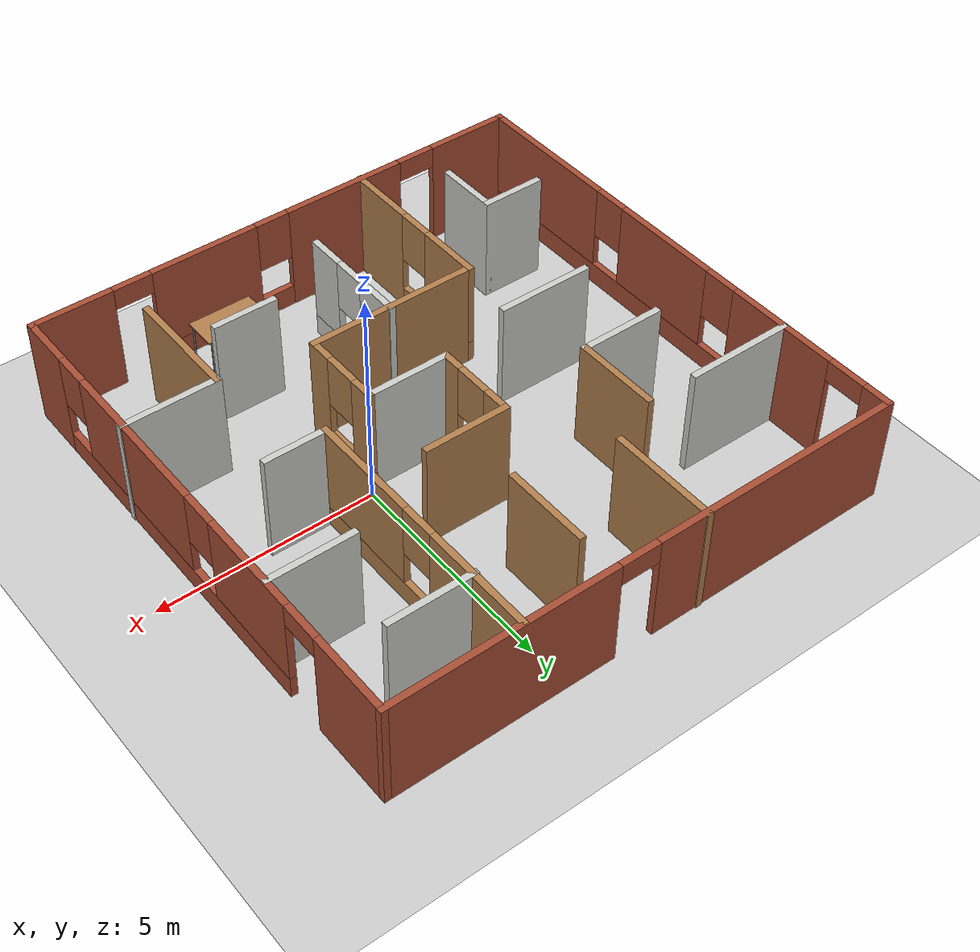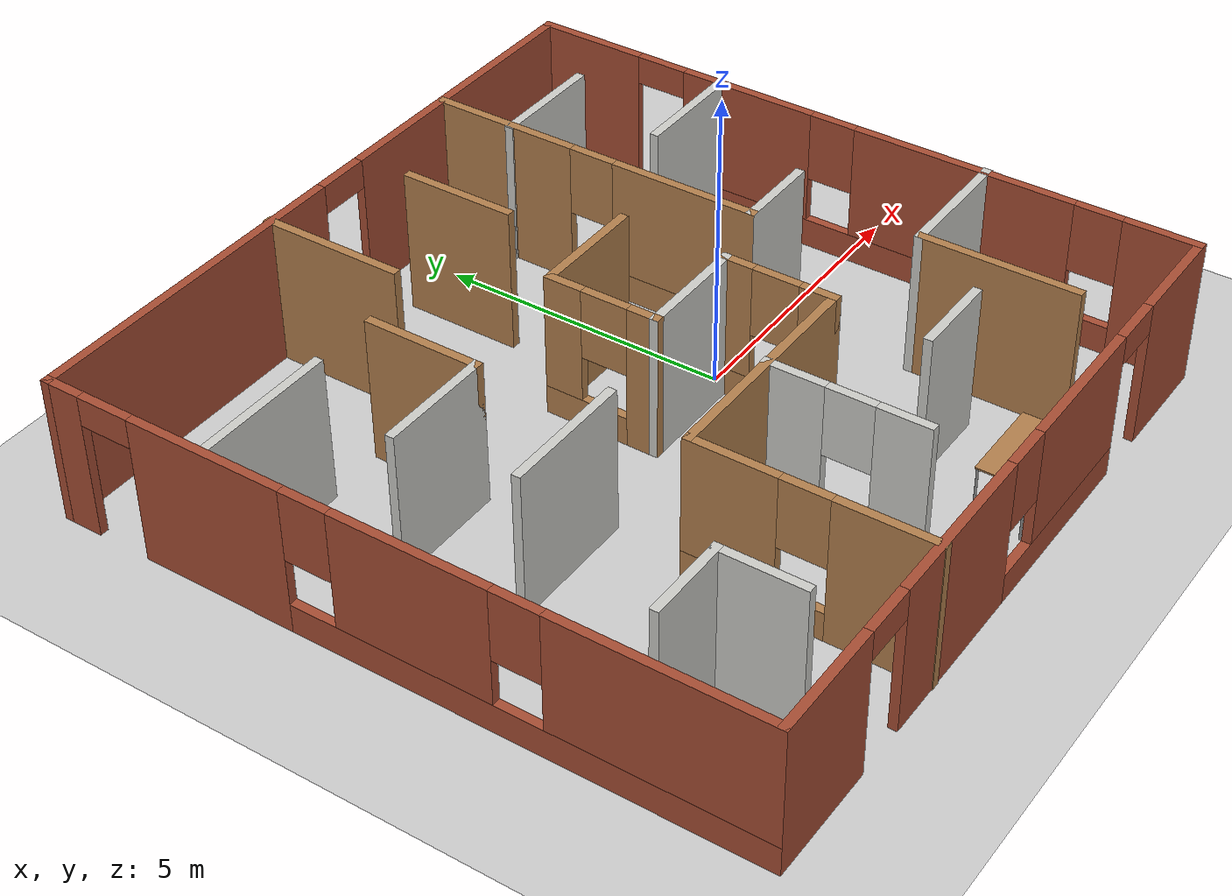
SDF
<sdf version="1.6">
 <world name="default">
  <light name="sun" type="directional">
   <pose>0 0 10 0 -0 0</pose>
   <diffuse>0.8 0.8 0.8 1</diffuse>
   <specular>0.2 0.2 0.2 1</specular>
   <attenuation>
    <range>1000</range>
    <constant>0.9</constant>
    <linear>0.01</linear>
    <quadratic>0.001</quadratic>
   </attenuation>
   <direction>-0.5 0.1 -0.9</direction>
  </light>
  <model name="ground_plane">
   <static>1</static>
   <link name="link">
    <collision name="collision">
     <geometry><plane><normal>0 0 1</normal><size>100 100</size></plane></geometry>
     <surface><friction><ode><mu>100</mu><mu2>50</mu2></ode></friction></surface>
    </collision>
    <visual name="visual">
     <cast_shadows>0</cast_shadows>
     <geometry><plane><normal>0 0 1</normal><size>100 100</size></plane></geometry>
     <material>
      <script><uri>file://media/materials/scripts/gazebo.material</uri><name>Gazebo/Grey</name></script>
     </material>
    </visual>
   </link>
  </model>
  <gravity>0 0 -9.8</gravity>
  <magnetic_field>6e-06 2.3e-05 -4.2e-05</magnetic_field>
  <atmosphere type="adiabatic"/>
  <physics name="default_physics" default="0" type="ode">
   <max_step_size>0.001</max_step_size>
   <real_time_factor>1</real_time_factor>
   <real_time_update_rate>1000</real_time_update_rate>
  </physics>
  <scene><ambient>0.4 0.4 0.4 1</ambient><background>0.7 0.7 0.7 1</background><shadows>1</shadows></scene>
  <spherical_coordinates>
   <surface_model>EARTH_WGS84</surface_model>
   <latitude_deg>0</latitude_deg>
   <longitude_deg>0</longitude_deg>
   <elevation>0</elevation>
   <heading_deg>0</heading_deg>
  </spherical_coordinates>
  <model name="big_building_gpokhark">
   <pose>-1.91617 0.021336 0 0 -0 0</pose>
   <link name="Wall_0">
    <pose>-0.011397 -5.93141 0 0 -0 0</pose>
    <visual name="Wall_0_Visual_0">
     <pose>-4.98708 0 1.25 0 -0 0</pose>
     <geometry><box><size>2.02584 0.15 2.5</size></box></geometry>
     <material>
      <script><uri>file://media/materials/scripts/gazebo.material</uri><name>Gazebo/Bricks</name></script>
      <ambient>1 1 1 1</ambient>
     </material>
     <meta><layer>0</layer></meta>
    </visual>
    <collision name="Wall_0_Collision_0">
     <geometry><box><size>2.02584 0.15 2.5</size></box></geometry>
     <pose>-4.98708 0 1.25 0 -0 0</pose>
    </collision>
    <visual name="Wall_0_Visual_1">
     <pose>-1.6087 0 1.25 0 -0 0</pose>
     <geometry><box><size>2.93091 0.15 2.5</size></box></geometry>
     <material>
      <script><uri>file://media/materials/scripts/gazebo.material</uri><name>Gazebo/Bricks</name></script>
      <ambient>1 1 1 1</ambient>
     </material>
     <meta><layer>0</layer></meta>
    </visual>
    <collision name="Wall_0_Collision_1">
     <geometry><box><size>2.93091 0.15 2.5</size></box></geometry>
     <pose>-1.6087 0 1.25 0 -0 0</pose>
    </collision>
    <visual name="Wall_0_Visual_2">
     <pose>5.05633 0 1.25 0 -0 0</pose>
     <geometry><box><size>1.88735 0.15 2.5</size></box></geometry>
     <material>
      <script><uri>file://media/materials/scripts/gazebo.material</uri><name>Gazebo/Bricks</name></script>
      <ambient>1 1 1 1</ambient>
     </material>
     <meta><layer>0</layer></meta>
    </visual>
    <collision name="Wall_0_Collision_2">
     <geometry><box><size>1.88735 0.15 2.5</size></box></geometry>
     <pose>5.05633 0 1.25 0 -0 0</pose>
    </collision>
    <visual name="Wall_0_Visual_3">
     <pose>1.5347 0 0.25 0 -0 0</pose>
     <geometry><box><size>3.3559 0.15 0.5</size></box></geometry>
     <material>
      <script><uri>file://media/materials/scripts/gazebo.material</uri><name>Gazebo/Bricks</name></script>
      <ambient>1 1 1 1</ambient>
     </material>
     <meta><layer>0</layer></meta>
    </visual>
    <collision name="Wall_0_Collision_3">
     <geometry><box><size>3.3559 0.15 0.5</size></box></geometry>
     <pose>1.5347 0 0.25 0 -0 0</pose>
    </collision>
    <visual name="Wall_0_Visual_4">
     <pose>1.9347 0 1.5 0 -0 0</pose>
     <geometry><box><size>2.5559 0.15 2</size></box></geometry>
     <material>
      <script><uri>file://media/materials/scripts/gazebo.material</uri><name>Gazebo/Bricks</name></script>
      <ambient>1 1 1 1</ambient>
     </material>
     <meta><layer>0</layer></meta>
    </visual>
    <collision name="Wall_0_Collision_4">
     <geometry><box><size>2.5559 0.15 2</size></box></geometry>
     <pose>1.9347 0 1.5 0 -0 0</pose>
    </collision>
    <visual name="Wall_0_Visual_5">
     <pose>0.256754 0 1.9 0 -0 0</pose>
     <geometry><box><size>0.8 0.15 1.2</size></box></geometry>
     <material>
      <script><uri>file://media/materials/scripts/gazebo.material</uri><name>Gazebo/Bricks</name></script>
      <ambient>1 1 1 1</ambient>
     </material>
     <meta><layer>0</layer></meta>
    </visual>
    <collision name="Wall_0_Collision_5">
     <geometry><box><size>0.8 0.15 1.2</size></box></geometry>
     <pose>0.256754 0 1.9 0 -0 0</pose>
    </collision>
    <visual name="Wall_0_Visual_6">
     <pose>-3.52415 0 2.25 0 -0 0</pose>
     <geometry><box><size>0.9 0.15 0.5</size></box></geometry>
     <material>
      <script><uri>file://media/materials/scripts/gazebo.material</uri><name>Gazebo/Bricks</name></script>
      <ambient>1 1 1 1</ambient>
     </material>
     <meta><layer>0</layer></meta>
    </visual>
    <collision name="Wall_0_Collision_6">
     <geometry><box><size>0.9 0.15 0.5</size></box></geometry>
     <pose>-3.52415 0 2.25 0 -0 0</pose>
    </collision>
    <visual name="Wall_0_Visual_7">
     <pose>3.66265 0 2.25 0 -0 0</pose>
     <geometry><box><size>0.9 0.15 0.5</size></box></geometry>
     <material>
      <script><uri>file://media/materials/scripts/gazebo.material</uri><name>Gazebo/Bricks</name></script>
      <ambient>1 1 1 1</ambient>
     </material>
     <meta><layer>0</layer></meta>
    </visual>
    <collision name="Wall_0_Collision_7">
     <geometry><box><size>0.9 0.15 0.5</size></box></geometry>
     <pose>3.66265 0 2.25 0 -0 0</pose>
    </collision>
   </link>
   <link name="Wall_10">
    <pose>1.76178 -1.16962 0 0 -0 1.5708</pose>
    <visual name="Wall_10_Visual_0">
     <pose>-0.688352 0 1.25 0 -0 0</pose>
     <geometry><box><size>0.623296 0.15 2.5</size></box></geometry>
     <material>
      <script><uri>file://media/materials/scripts/gazebo.material</uri><name>Gazebo/Wood</name></script>
      <ambient>1 1 1 1</ambient>
     </material>
     <meta><layer>0</layer></meta>
    </visual>
    <collision name="Wall_10_Collision_0">
     <geometry><box><size>0.623296 0.15 2.5</size></box></geometry>
     <pose>-0.688352 0 1.25 0 -0 0</pose>
    </collision>
    <visual name="Wall_10_Visual_1">
     <pose>0.311648 0 0.25 0 -0 0</pose>
     <geometry><box><size>1.3767 0.15 0.5</size></box></geometry>
     <material>
      <script><uri>file://media/materials/scripts/gazebo.material</uri><name>Gazebo/Wood</name></script>
      <ambient>1 1 1 1</ambient>
     </material>
     <meta><layer>0</layer></meta>
    </visual>
    <collision name="Wall_10_Collision_1">
     <geometry><box><size>1.3767 0.15 0.5</size></box></geometry>
     <pose>0.311648 0 0.25 0 -0 0</pose>
    </collision>
    <visual name="Wall_10_Visual_2">
     <pose>0.711648 0 1.5 0 -0 0</pose>
     <geometry><box><size>0.576704 0.15 2</size></box></geometry>
     <material>
      <script><uri>file://media/materials/scripts/gazebo.material</uri><name>Gazebo/Wood</name></script>
      <ambient>1 1 1 1</ambient>
     </material>
     <meta><layer>0</layer></meta>
    </visual>
    <collision name="Wall_10_Collision_2">
     <geometry><box><size>0.576704 0.15 2</size></box></geometry>
     <pose>0.711648 0 1.5 0 -0 0</pose>
    </collision>
    <visual name="Wall_10_Visual_3">
     <pose>0.023296 0 1.9 0 -0 0</pose>
     <geometry><box><size>0.8 0.15 1.2</size></box></geometry>
     <material>
      <script><uri>file://media/materials/scripts/gazebo.material</uri><name>Gazebo/Wood</name></script>
      <ambient>1 1 1 1</ambient>
     </material>
     <meta><layer>0</layer></meta>
    </visual>
    <collision name="Wall_10_Collision_3">
     <geometry><box><size>0.8 0.15 1.2</size></box></geometry>
     <pose>0.023296 0 1.9 0 -0 0</pose>
    </collision>
   </link>
   <link name="Wall_11">
    <collision name="Wall_11_Collision">
     <geometry><box><size>2 0.15 2.5</size></box></geometry>
     <pose>0 0 1.25 0 -0 0</pose>
    </collision>
    <visual name="Wall_11_Visual">
     <pose>0 0 1.25 0 -0 0</pose>
     <geometry><box><size>2 0.15 2.5</size></box></geometry>
     <material>
      <script><uri>file://media/materials/scripts/gazebo.material</uri><name>Gazebo/CeilingTiled</name></script>
      <ambient>1 1 1 1</ambient>
     </material>
     <meta><layer>0</layer></meta>
    </visual>
    <pose>0.836776 -0.244623 0 0 -0 3.14159</pose>
   </link>
   <link name="Wall_12">
    <pose>-0.088224 0.680377 0 0 -0 1.5708</pose>
    <visual name="Wall_12_Visual_0">
     <pose>-0.728355 0 1.25 0 -0 0</pose>
     <geometry><box><size>0.54329 0.15 2.5</size></box></geometry>
     <material>
      <script><uri>file://media/materials/scripts/gazebo.material</uri><name>Gazebo/Wood</name></script>
      <ambient>1 1 1 1</ambient>
     </material>
     <meta><layer>0</layer></meta>
    </visual>
    <collision name="Wall_12_Collision_0">
     <geometry><box><size>0.54329 0.15 2.5</size></box></geometry>
     <pose>-0.728355 0 1.25 0 -0 0</pose>
    </collision>
    <visual name="Wall_12_Visual_1">
     <pose>0.271645 0 0.25 0 -0 0</pose>
     <geometry><box><size>1.45671 0.15 0.5</size></box></geometry>
     <material>
      <script><uri>file://media/materials/scripts/gazebo.material</uri><name>Gazebo/Wood</name></script>
      <ambient>1 1 1 1</ambient>
     </material>
     <meta><layer>0</layer></meta>
    </visual>
    <collision name="Wall_12_Collision_1">
     <geometry><box><size>1.45671 0.15 0.5</size></box></geometry>
     <pose>0.271645 0 0.25 0 -0 0</pose>
    </collision>
    <visual name="Wall_12_Visual_2">
     <pose>0.671645 0 1.5 0 -0 0</pose>
     <geometry><box><size>0.65671 0.15 2</size></box></geometry>
     <material>
      <script><uri>file://media/materials/scripts/gazebo.material</uri><name>Gazebo/Wood</name></script>
      <ambient>1 1 1 1</ambient>
     </material>
     <meta><layer>0</layer></meta>
    </visual>
    <collision name="Wall_12_Collision_2">
     <geometry><box><size>0.65671 0.15 2</size></box></geometry>
     <pose>0.671645 0 1.5 0 -0 0</pose>
    </collision>
    <visual name="Wall_12_Visual_3">
     <pose>-0.05671 0 1.9 0 -0 0</pose>
     <geometry><box><size>0.8 0.15 1.2</size></box></geometry>
     <material>
      <script><uri>file://media/materials/scripts/gazebo.material</uri><name>Gazebo/Wood</name></script>
      <ambient>1 1 1 1</ambient>
     </material>
     <meta><layer>0</layer></meta>
    </visual>
    <collision name="Wall_12_Collision_3">
     <geometry><box><size>0.8 0.15 1.2</size></box></geometry>
     <pose>-0.05671 0 1.9 0 -0 0</pose>
    </collision>
   </link>
   <link name="Wall_13">
    <collision name="Wall_13_Collision">
     <geometry><box><size>2 0.15 2.5</size></box></geometry>
     <pose>0 0 1.25 0 -0 0</pose>
    </collision>
    <visual name="Wall_13_Visual">
     <pose>0 0 1.25 0 -0 0</pose>
     <geometry><box><size>2 0.15 2.5</size></box></geometry>
     <material>
      <script><uri>file://media/materials/scripts/gazebo.material</uri><name>Gazebo/Wood</name></script>
      <ambient>1 1 1 1</ambient>
     </material>
     <meta><layer>0</layer></meta>
    </visual>
    <pose>0.836776 1.60538 0 0 -0 0</pose>
   </link>
   <link name="Wall_15">
    <collision name="Wall_15_Collision">
     <geometry><box><size>2 0.15 2.5</size></box></geometry>
     <pose>0 0 1.25 0 -0 0</pose>
    </collision>
    <visual name="Wall_15_Visual">
     <pose>0 0 1.25 0 -0 0</pose>
     <geometry><box><size>2 0.15 2.5</size></box></geometry>
     <material>
      <script><uri>file://media/materials/scripts/gazebo.material</uri><name>Gazebo/CeilingTiled</name></script>
      <ambient>0 0 1 1</ambient>
     </material>
     <meta><layer>0</layer></meta>
    </visual>
    <pose>-3.30867 1.23796 0 0 -0 0</pose>
   </link>
   <link name="Wall_16">
    <collision name="Wall_16_Collision">
     <geometry><box><size>2 0.15 2.5</size></box></geometry>
     <pose>0 0 1.25 0 -0 0</pose>
    </collision>
    <visual name="Wall_16_Visual">
     <pose>0 0 1.25 0 -0 0</pose>
     <geometry><box><size>2 0.15 2.5</size></box></geometry>
     <material>
      <script><uri>file://media/materials/scripts/gazebo.material</uri><name>Gazebo/Wood</name></script>
      <ambient>0.996078 0.47451 0.0196078 1</ambient>
     </material>
     <meta><layer>0</layer></meta>
    </visual>
    <pose>-2.38367 2.16296 0 0 -0 1.5708</pose>
   </link>
   <link name="Wall_18">
    <collision name="Wall_18_Collision">
     <geometry><box><size>2.5 0.15 2.5</size></box></geometry>
     <pose>0 0 1.25 0 -0 0</pose>
    </collision>
    <visual name="Wall_18_Visual">
     <pose>0 0 1.25 0 -0 0</pose>
     <geometry><box><size>2.5 0.15 2.5</size></box></geometry>
     <material>
      <script><uri>file://media/materials/scripts/gazebo.material</uri><name>Gazebo/CeilingTiled</name></script>
      <ambient>0 0 1 1</ambient>
     </material>
     <meta><layer>0</layer></meta>
    </visual>
    <pose>-4.73772 3.12689 0 0 -0 0</pose>
   </link>
   <link name="Wall_2">
    <pose>5.9136 -0.006407 0 0 -0 1.5708</pose>
    <visual name="Wall_2_Visual_0">
     <pose>-5.35223 0 1.25 0 -0 0</pose>
     <geometry><box><size>1.29554 0.15 2.5</size></box></geometry>
     <material>
      <script><uri>file://media/materials/scripts/gazebo.material</uri><name>Gazebo/Bricks</name></script>
      <ambient>1 1 1 1</ambient>
     </material>
     <meta><layer>0</layer></meta>
    </visual>
    <collision name="Wall_2_Collision_0">
     <geometry><box><size>1.29554 0.15 2.5</size></box></geometry>
     <pose>-5.35223 0 1.25 0 -0 0</pose>
    </collision>
    <visual name="Wall_2_Visual_1">
     <pose>5.02844 0 1.25 0 -0 0</pose>
     <geometry><box><size>1.94312 0.15 2.5</size></box></geometry>
     <material>
      <script><uri>file://media/materials/scripts/gazebo.material</uri><name>Gazebo/Bricks</name></script>
      <ambient>1 1 1 1</ambient>
     </material>
     <meta><layer>0</layer></meta>
    </visual>
    <collision name="Wall_2_Collision_1">
     <geometry><box><size>1.94312 0.15 2.5</size></box></geometry>
     <pose>5.02844 0 1.25 0 -0 0</pose>
    </collision>
    <visual name="Wall_2_Visual_2">
     <pose>-0.773787 0 0.25 0 -0 0</pose>
     <geometry><box><size>7.86134 0.15 0.5</size></box></geometry>
     <material>
      <script><uri>file://media/materials/scripts/gazebo.material</uri><name>Gazebo/Bricks</name></script>
      <ambient>1 1 1 1</ambient>
     </material>
     <meta><layer>0</layer></meta>
    </visual>
    <collision name="Wall_2_Collision_2">
     <geometry><box><size>7.86134 0.15 0.5</size></box></geometry>
     <pose>-0.773787 0 0.25 0 -0 0</pose>
    </collision>
    <visual name="Wall_2_Visual_3">
     <pose>-1.98469 0 1.5 0 -0 0</pose>
     <geometry><box><size>3.83953 0.15 2</size></box></geometry>
     <material>
      <script><uri>file://media/materials/scripts/gazebo.material</uri><name>Gazebo/Bricks</name></script>
      <ambient>1 1 1 1</ambient>
     </material>
     <meta><layer>0</layer></meta>
    </visual>
    <collision name="Wall_2_Collision_3">
     <geometry><box><size>3.83953 0.15 2</size></box></geometry>
     <pose>-1.98469 0 1.5 0 -0 0</pose>
    </collision>
    <visual name="Wall_2_Visual_4">
     <pose>1.94598 0 1.5 0 -0 0</pose>
     <geometry><box><size>2.42181 0.15 2</size></box></geometry>
     <material>
      <script><uri>file://media/materials/scripts/gazebo.material</uri><name>Gazebo/Bricks</name></script>
      <ambient>1 1 1 1</ambient>
     </material>
     <meta><layer>0</layer></meta>
    </visual>
    <collision name="Wall_2_Collision_4">
     <geometry><box><size>2.42181 0.15 2</size></box></geometry>
     <pose>1.94598 0 1.5 0 -0 0</pose>
    </collision>
    <visual name="Wall_2_Visual_5">
     <pose>-4.30446 0 1.9 0 -0 0</pose>
     <geometry><box><size>0.8 0.15 1.2</size></box></geometry>
     <material>
      <script><uri>file://media/materials/scripts/gazebo.material</uri><name>Gazebo/Bricks</name></script>
      <ambient>1 1 1 1</ambient>
     </material>
     <meta><layer>0</layer></meta>
    </visual>
    <collision name="Wall_2_Collision_5">
     <geometry><box><size>0.8 0.15 1.2</size></box></geometry>
     <pose>-4.30446 0 1.9 0 -0 0</pose>
    </collision>
    <visual name="Wall_2_Visual_6">
     <pose>0.335074 0 1.9 0 -0 0</pose>
     <geometry><box><size>0.8 0.15 1.2</size></box></geometry>
     <material>
      <script><uri>file://media/materials/scripts/gazebo.material</uri><name>Gazebo/Bricks</name></script>
      <ambient>1 1 1 1</ambient>
     </material>
     <meta><layer>0</layer></meta>
    </visual>
    <collision name="Wall_2_Collision_6">
     <geometry><box><size>0.8 0.15 1.2</size></box></geometry>
     <pose>0.335074 0 1.9 0 -0 0</pose>
    </collision>
    <visual name="Wall_2_Visual_7">
     <pose>3.60688 0 2.25 0 -0 0</pose>
     <geometry><box><size>0.9 0.15 0.5</size></box></geometry>
     <material>
      <script><uri>file://media/materials/scripts/gazebo.material</uri><name>Gazebo/Bricks</name></script>
      <ambient>1 1 1 1</ambient>
     </material>
     <meta><layer>0</layer></meta>
    </visual>
    <collision name="Wall_2_Collision_7">
     <geometry><box><size>0.9 0.15 0.5</size></box></geometry>
     <pose>3.60688 0 2.25 0 -0 0</pose>
    </collision>
   </link>
   <link name="Wall_20">
    <collision name="Wall_20_Collision">
     <geometry><box><size>2.25 0.15 2.5</size></box></geometry>
     <pose>0 0 1.25 0 -0 0</pose>
    </collision>
    <visual name="Wall_20_Visual">
     <pose>0 0 1.25 0 -0 0</pose>
     <geometry><box><size>2.25 0.15 2.5</size></box></geometry>
     <material>
      <script><uri>file://media/materials/scripts/gazebo.material</uri><name>Gazebo/CeilingTiled</name></script>
      <ambient>0 0 1 1</ambient>
     </material>
     <meta><layer>0</layer></meta>
    </visual>
    <pose>-2.90948 -0.652628 0 0 -0 0</pose>
   </link>
   <link name="Wall_22">
    <collision name="Wall_22_Collision">
     <geometry><box><size>2.5 0.15 2.5</size></box></geometry>
     <pose>0 0 1.25 0 -0 0</pose>
    </collision>
    <visual name="Wall_22_Visual">
     <pose>0 0 1.25 0 -0 0</pose>
     <geometry><box><size>2.5 0.15 2.5</size></box></geometry>
     <material>
      <script><uri>file://media/materials/scripts/gazebo.material</uri><name>Gazebo/Wood</name></script>
      <ambient>0.996078 0.47451 0.0196078 1</ambient>
     </material>
     <meta><layer>0</layer></meta>
    </visual>
    <pose>-1.25085 4.76962 0 0 0 -1.5708</pose>
   </link>
   <link name="Wall_24">
    <pose>2.95959 2.96599 0 0 0 -1.5708</pose>
    <visual name="Wall_24_Visual_0">
     <pose>-1.69543 0 1.25 0 -0 0</pose>
     <geometry><box><size>2.60915 0.15 2.5</size></box></geometry>
     <material>
      <script><uri>file://media/materials/scripts/gazebo.material</uri><name>Gazebo/Wood</name></script>
      <ambient>1 1 1 1</ambient>
     </material>
     <meta><layer>0</layer></meta>
    </visual>
    <collision name="Wall_24_Collision_0">
     <geometry><box><size>2.60915 0.15 2.5</size></box></geometry>
     <pose>-1.69543 0 1.25 0 -0 0</pose>
    </collision>
    <visual name="Wall_24_Visual_1">
     <pose>1.30457 0 0.25 0 -0 0</pose>
     <geometry><box><size>3.39085 0.15 0.5</size></box></geometry>
     <material>
      <script><uri>file://media/materials/scripts/gazebo.material</uri><name>Gazebo/Wood</name></script>
      <ambient>1 1 1 1</ambient>
     </material>
     <meta><layer>0</layer></meta>
    </visual>
    <collision name="Wall_24_Collision_1">
     <geometry><box><size>3.39085 0.15 0.5</size></box></geometry>
     <pose>1.30457 0 0.25 0 -0 0</pose>
    </collision>
    <visual name="Wall_24_Visual_2">
     <pose>1.70457 0 1.5 0 -0 0</pose>
     <geometry><box><size>2.59085 0.15 2</size></box></geometry>
     <material>
      <script><uri>file://media/materials/scripts/gazebo.material</uri><name>Gazebo/Wood</name></script>
      <ambient>1 1 1 1</ambient>
     </material>
     <meta><layer>0</layer></meta>
    </visual>
    <collision name="Wall_24_Collision_2">
     <geometry><box><size>2.59085 0.15 2</size></box></geometry>
     <pose>1.70457 0 1.5 0 -0 0</pose>
    </collision>
    <visual name="Wall_24_Visual_3">
     <pose>0.009146 0 1.9 0 -0 0</pose>
     <geometry><box><size>0.8 0.15 1.2</size></box></geometry>
     <material>
      <script><uri>file://media/materials/scripts/gazebo.material</uri><name>Gazebo/Wood</name></script>
      <ambient>1 1 1 1</ambient>
     </material>
     <meta><layer>0</layer></meta>
    </visual>
    <collision name="Wall_24_Collision_3">
     <geometry><box><size>0.8 0.15 1.2</size></box></geometry>
     <pose>0.009146 0 1.9 0 -0 0</pose>
    </collision>
   </link>
   <link name="Wall_25">
    <collision name="Wall_25_Collision">
     <geometry><box><size>1.5 0.15 2.5</size></box></geometry>
     <pose>0 0 1.25 0 -0 0</pose>
    </collision>
    <visual name="Wall_25_Visual">
     <pose>0 0 1.25 0 -0 0</pose>
     <geometry><box><size>1.5 0.15 2.5</size></box></geometry>
     <material>
      <script><uri>file://media/materials/scripts/gazebo.material</uri><name>Gazebo/CeilingTiled</name></script>
      <ambient>0.666667 0 0 1</ambient>
     </material>
     <meta><layer>0</layer></meta>
    </visual>
    <pose>3.63459 0.040987 0 0 -0 0</pose>
   </link>
   <link name="Wall_27">
    <collision name="Wall_27_Collision">
     <geometry><box><size>2.25 0.15 2.5</size></box></geometry>
     <pose>0 0 1.25 0 -0 0</pose>
    </collision>
    <visual name="Wall_27_Visual">
     <pose>0 0 1.25 0 -0 0</pose>
     <geometry><box><size>2.25 0.15 2.5</size></box></geometry>
     <material>
      <script><uri>file://media/materials/scripts/gazebo.material</uri><name>Gazebo/CeilingTiled</name></script>
      <ambient>0.666667 0 0 1</ambient>
     </material>
     <meta><layer>0</layer></meta>
    </visual>
    <pose>4.8864 -2.36899 0 0 -0 3.14159</pose>
   </link>
   <link name="Wall_28">
    <collision name="Wall_28_Collision">
     <geometry><box><size>2.75 0.15 2.5</size></box></geometry>
     <pose>0 0 1.25 0 -0 0</pose>
    </collision>
    <visual name="Wall_28_Visual">
     <pose>0 0 1.25 0 -0 0</pose>
     <geometry><box><size>2.75 0.15 2.5</size></box></geometry>
     <material>
      <script><uri>file://media/materials/scripts/gazebo.material</uri><name>Gazebo/Wood</name></script>
      <ambient>1 1 1 1</ambient>
     </material>
     <meta><layer>0</layer></meta>
    </visual>
    <pose>3.8364 -3.66899 0 0 0 -1.5708</pose>
   </link>
   <link name="Wall_30">
    <pose>-0.070855 -3.37399 0 0 0 -1.5708</pose>
    <visual name="Wall_30_Visual_0">
     <pose>-0.848152 0 1.25 0 -0 0</pose>
     <geometry><box><size>1.0537 0.15 2.5</size></box></geometry>
     <material>
      <script><uri>file://media/materials/scripts/gazebo.material</uri><name>Gazebo/CeilingTiled</name></script>
      <ambient>1 1 1 1</ambient>
     </material>
     <meta><layer>0</layer></meta>
    </visual>
    <collision name="Wall_30_Collision_0">
     <geometry><box><size>1.0537 0.15 2.5</size></box></geometry>
     <pose>-0.848152 0 1.25 0 -0 0</pose>
    </collision>
    <visual name="Wall_30_Visual_1">
     <pose>0.526848 0 0.25 0 -0 0</pose>
     <geometry><box><size>1.6963 0.15 0.5</size></box></geometry>
     <material>
      <script><uri>file://media/materials/scripts/gazebo.material</uri><name>Gazebo/CeilingTiled</name></script>
      <ambient>1 1 1 1</ambient>
     </material>
     <meta><layer>0</layer></meta>
    </visual>
    <collision name="Wall_30_Collision_1">
     <geometry><box><size>1.6963 0.15 0.5</size></box></geometry>
     <pose>0.526848 0 0.25 0 -0 0</pose>
    </collision>
    <visual name="Wall_30_Visual_2">
     <pose>0.926848 0 1.5 0 -0 0</pose>
     <geometry><box><size>0.896304 0.15 2</size></box></geometry>
     <material>
      <script><uri>file://media/materials/scripts/gazebo.material</uri><name>Gazebo/CeilingTiled</name></script>
      <ambient>1 1 1 1</ambient>
     </material>
     <meta><layer>0</layer></meta>
    </visual>
    <collision name="Wall_30_Collision_2">
     <geometry><box><size>0.896304 0.15 2</size></box></geometry>
     <pose>0.926848 0 1.5 0 -0 0</pose>
    </collision>
    <visual name="Wall_30_Visual_3">
     <pose>0.078696 0 1.9 0 -0 0</pose>
     <geometry><box><size>0.8 0.15 1.2</size></box></geometry>
     <material>
      <script><uri>file://media/materials/scripts/gazebo.material</uri><name>Gazebo/CeilingTiled</name></script>
      <ambient>1 1 1 1</ambient>
     </material>
     <meta><layer>0</layer></meta>
    </visual>
    <collision name="Wall_30_Collision_3">
     <geometry><box><size>0.8 0.15 1.2</size></box></geometry>
     <pose>0.078696 0 1.9 0 -0 0</pose>
    </collision>
   </link>
   <link name="Wall_32">
    <collision name="Wall_32_Collision">
     <geometry><box><size>1.5 0.15 2.5</size></box></geometry>
     <pose>0 0 1.25 0 -0 0</pose>
    </collision>
    <visual name="Wall_32_Visual">
     <pose>0 0 1.25 0 -0 0</pose>
     <geometry><box><size>1.5 0.15 2.5</size></box></geometry>
     <material>
      <script><uri>file://media/materials/scripts/gazebo.material</uri><name>Gazebo/CeilingTiled</name></script>
      <ambient>0.666667 0 0 1</ambient>
     </material>
     <meta><layer>0</layer></meta>
    </visual>
    <pose>2.34732 -3.70989 0 0 -0 0</pose>
   </link>
   <link name="Wall_34">
    <collision name="Wall_34_Collision">
     <geometry><box><size>2 0.15 2.5</size></box></geometry>
     <pose>0 0 1.25 0 -0 0</pose>
    </collision>
    <visual name="Wall_34_Visual">
     <pose>0 0 1.25 0 -0 0</pose>
     <geometry><box><size>2 0.15 2.5</size></box></geometry>
     <material>
      <script><uri>file://media/materials/scripts/gazebo.material</uri><name>Gazebo/CeilingTiled</name></script>
      <ambient>1 1 1 1</ambient>
     </material>
     <meta><layer>0</layer></meta>
    </visual>
    <pose>3.85777 4.52326 0 0 -0 0</pose>
   </link>
   <link name="Wall_36">
    <collision name="Wall_36_Collision">
     <geometry><box><size>2 0.15 2.5</size></box></geometry>
     <pose>0 0 1.25 0 -0 0</pose>
    </collision>
    <visual name="Wall_36_Visual">
     <pose>0 0 1.25 0 -0 0</pose>
     <geometry><box><size>2 0.15 2.5</size></box></geometry>
     <material>
      <script><uri>file://media/materials/scripts/gazebo.material</uri><name>Gazebo/CeilingTiled</name></script>
      <ambient>1 1 1 1</ambient>
     </material>
     <meta><layer>0</layer></meta>
    </visual>
    <pose>4.95776 2.48509 0 0 -0 3.14159</pose>
   </link>
   <link name="Wall_38">
    <collision name="Wall_38_Collision">
     <geometry><box><size>1.5 0.15 2.5</size></box></geometry>
     <pose>0 0 1.25 0 -0 0</pose>
    </collision>
    <visual name="Wall_38_Visual">
     <pose>0 0 1.25 0 -0 0</pose>
     <geometry><box><size>1.5 0.15 2.5</size></box></geometry>
     <material>
      <script><uri>file://media/materials/scripts/gazebo.material</uri><name>Gazebo/CeilingTiled</name></script>
      <ambient>0 0 1 1</ambient>
     </material>
     <meta><layer>0</layer></meta>
    </visual>
    <pose>-4.41084 -3.5758 0 0 -0 0</pose>
   </link>
   <link name="Wall_39">
    <collision name="Wall_39_Collision">
     <geometry><box><size>1.5 0.15 2.5</size></box></geometry>
     <pose>0 0 1.25 0 -0 0</pose>
    </collision>
    <visual name="Wall_39_Visual">
     <pose>0 0 1.25 0 -0 0</pose>
     <geometry><box><size>1.5 0.15 2.5</size></box></geometry>
     <material>
      <script><uri>file://media/materials/scripts/gazebo.material</uri><name>Gazebo/CeilingTiled</name></script>
      <ambient>1 1 1 1</ambient>
     </material>
     <meta><layer>0</layer></meta>
    </visual>
    <pose>-3.73584 -4.2508 0 0 0 -1.5708</pose>
   </link>
   <link name="Wall_4">
    <pose>-0.011397 5.91859 0 0 -0 3.14159</pose>
    <visual name="Wall_4_Visual_0">
     <pose>-3.40701 0 1.25 0 -0 0</pose>
     <geometry><box><size>5.18597 0.15 2.5</size></box></geometry>
     <material>
      <script><uri>file://media/materials/scripts/gazebo.material</uri><name>Gazebo/Bricks</name></script>
      <ambient>1 1 1 1</ambient>
     </material>
     <meta><layer>0</layer></meta>
    </visual>
    <collision name="Wall_4_Collision_0">
     <geometry><box><size>5.18597 0.15 2.5</size></box></geometry>
     <pose>-3.40701 0 1.25 0 -0 0</pose>
    </collision>
    <visual name="Wall_4_Visual_1">
     <pose>3.04299 0 1.25 0 -0 0</pose>
     <geometry><box><size>5.91403 0.15 2.5</size></box></geometry>
     <material>
      <script><uri>file://media/materials/scripts/gazebo.material</uri><name>Gazebo/Bricks</name></script>
      <ambient>1 1 1 1</ambient>
     </material>
     <meta><layer>0</layer></meta>
    </visual>
    <collision name="Wall_4_Collision_1">
     <geometry><box><size>5.91403 0.15 2.5</size></box></geometry>
     <pose>3.04299 0 1.25 0 -0 0</pose>
    </collision>
    <visual name="Wall_4_Visual_2">
     <pose>-0.364026 0 2.25 0 -0 0</pose>
     <geometry><box><size>0.9 0.15 0.5</size></box></geometry>
     <material>
      <script><uri>file://media/materials/scripts/gazebo.material</uri><name>Gazebo/Bricks</name></script>
      <ambient>1 1 1 1</ambient>
     </material>
     <meta><layer>0</layer></meta>
    </visual>
    <collision name="Wall_4_Collision_2">
     <geometry><box><size>0.9 0.15 0.5</size></box></geometry>
     <pose>-0.364026 0 2.25 0 -0 0</pose>
    </collision>
   </link>
   <link name="Wall_41">
    <collision name="Wall_41_Collision">
     <geometry><box><size>2 0.15 2.5</size></box></geometry>
     <pose>0 0 1.25 0 -0 0</pose>
    </collision>
    <visual name="Wall_41_Visual">
     <pose>0 0 1.25 0 -0 0</pose>
     <geometry><box><size>2 0.15 2.5</size></box></geometry>
     <material>
      <script><uri>file://media/materials/scripts/gazebo.material</uri><name>Gazebo/Wood</name></script>
      <ambient>0.996078 0.47451 0.0196078 1</ambient>
     </material>
     <meta><layer>0</layer></meta>
    </visual>
    <pose>0.921414 4.05417 0 0 0 -1.5708</pose>
   </link>
   <link name="Wall_6">
    <pose>-5.9364 -0.006407 0 0 0 -1.5708</pose>
    <visual name="Wall_6_Visual_0">
     <pose>-5.65867 0 1.25 0 -0 0</pose>
     <geometry><box><size>0.682668 0.15 2.5</size></box></geometry>
     <material>
      <script><uri>file://media/materials/scripts/gazebo.material</uri><name>Gazebo/Bricks</name></script>
      <ambient>1 1 1 1</ambient>
     </material>
     <meta><layer>0</layer></meta>
    </visual>
    <collision name="Wall_6_Collision_0">
     <geometry><box><size>0.682668 0.15 2.5</size></box></geometry>
     <pose>-5.65867 0 1.25 0 -0 0</pose>
    </collision>
    <visual name="Wall_6_Visual_1">
     <pose>-3.08575 0 1.25 0 -0 0</pose>
     <geometry><box><size>2.66317 0.15 2.5</size></box></geometry>
     <material>
      <script><uri>file://media/materials/scripts/gazebo.material</uri><name>Gazebo/Bricks</name></script>
      <ambient>1 1 1 1</ambient>
     </material>
     <meta><layer>0</layer></meta>
    </visual>
    <collision name="Wall_6_Collision_1">
     <geometry><box><size>2.66317 0.15 2.5</size></box></geometry>
     <pose>-3.08575 0 1.25 0 -0 0</pose>
    </collision>
    <visual name="Wall_6_Visual_2">
     <pose>2.12292 0 0.25 0 -0 0</pose>
     <geometry><box><size>7.75416 0.15 0.5</size></box></geometry>
     <material>
      <script><uri>file://media/materials/scripts/gazebo.material</uri><name>Gazebo/Bricks</name></script>
      <ambient>1 1 1 1</ambient>
     </material>
     <meta><layer>0</layer></meta>
    </visual>
    <collision name="Wall_6_Collision_2">
     <geometry><box><size>7.75416 0.15 0.5</size></box></geometry>
     <pose>2.12292 0 0.25 0 -0 0</pose>
    </collision>
    <visual name="Wall_6_Visual_3">
     <pose>0.348787 0 1.5 0 -0 0</pose>
     <geometry><box><size>2.6059 0.15 2</size></box></geometry>
     <material>
      <script><uri>file://media/materials/scripts/gazebo.material</uri><name>Gazebo/Bricks</name></script>
      <ambient>1 1 1 1</ambient>
     </material>
     <meta><layer>0</layer></meta>
    </visual>
    <collision name="Wall_6_Collision_3">
     <geometry><box><size>2.6059 0.15 2</size></box></geometry>
     <pose>0.348787 0 1.5 0 -0 0</pose>
    </collision>
    <visual name="Wall_6_Visual_4">
     <pose>4.22587 0 1.5 0 -0 0</pose>
     <geometry><box><size>3.54826 0.15 2</size></box></geometry>
     <material>
      <script><uri>file://media/materials/scripts/gazebo.material</uri><name>Gazebo/Bricks</name></script>
      <ambient>1 1 1 1</ambient>
     </material>
     <meta><layer>0</layer></meta>
    </visual>
    <collision name="Wall_6_Collision_4">
     <geometry><box><size>3.54826 0.15 2</size></box></geometry>
     <pose>4.22587 0 1.5 0 -0 0</pose>
    </collision>
    <visual name="Wall_6_Visual_5">
     <pose>-1.35416 0 1.9 0 -0 0</pose>
     <geometry><box><size>0.8 0.15 1.2</size></box></geometry>
     <material>
      <script><uri>file://media/materials/scripts/gazebo.material</uri><name>Gazebo/Bricks</name></script>
      <ambient>1 1 1 1</ambient>
     </material>
     <meta><layer>0</layer></meta>
    </visual>
    <collision name="Wall_6_Collision_5">
     <geometry><box><size>0.8 0.15 1.2</size></box></geometry>
     <pose>-1.35416 0 1.9 0 -0 0</pose>
    </collision>
    <visual name="Wall_6_Visual_6">
     <pose>2.05174 0 1.9 0 -0 0</pose>
     <geometry><box><size>0.8 0.15 1.2</size></box></geometry>
     <material>
      <script><uri>file://media/materials/scripts/gazebo.material</uri><name>Gazebo/Bricks</name></script>
      <ambient>1 1 1 1</ambient>
     </material>
     <meta><layer>0</layer></meta>
    </visual>
    <collision name="Wall_6_Collision_6">
     <geometry><box><size>0.8 0.15 1.2</size></box></geometry>
     <pose>2.05174 0 1.9 0 -0 0</pose>
    </collision>
    <visual name="Wall_6_Visual_7">
     <pose>-4.86733 0 2.25 0 -0 0</pose>
     <geometry><box><size>0.9 0.15 0.5</size></box></geometry>
     <material>
      <script><uri>file://media/materials/scripts/gazebo.material</uri><name>Gazebo/Bricks</name></script>
      <ambient>1 1 1 1</ambient>
     </material>
     <meta><layer>0</layer></meta>
    </visual>
    <collision name="Wall_6_Collision_7">
     <geometry><box><size>0.9 0.15 0.5</size></box></geometry>
     <pose>-4.86733 0 2.25 0 -0 0</pose>
    </collision>
   </link>
   <link name="Wall_8">
    <pose>-2.08822 -4.01962 0 0 -0 1.5708</pose>
    <visual name="Wall_8_Visual_0">
     <pose>-1.15789 0 1.25 0 -0 0</pose>
     <geometry><box><size>1.68421 0.15 2.5</size></box></geometry>
     <material>
      <script><uri>file://media/materials/scripts/gazebo.material</uri><name>Gazebo/Wood</name></script>
      <ambient>1 1 1 1</ambient>
     </material>
     <meta><layer>0</layer></meta>
    </visual>
    <collision name="Wall_8_Collision_0">
     <geometry><box><size>1.68421 0.15 2.5</size></box></geometry>
     <pose>-1.15789 0 1.25 0 -0 0</pose>
    </collision>
    <visual name="Wall_8_Visual_1">
     <pose>0.842107 0 0.25 0 -0 0</pose>
     <geometry><box><size>2.31579 0.15 0.5</size></box></geometry>
     <material>
      <script><uri>file://media/materials/scripts/gazebo.material</uri><name>Gazebo/Wood</name></script>
      <ambient>1 1 1 1</ambient>
     </material>
     <meta><layer>0</layer></meta>
    </visual>
    <collision name="Wall_8_Collision_1">
     <geometry><box><size>2.31579 0.15 0.5</size></box></geometry>
     <pose>0.842107 0 0.25 0 -0 0</pose>
    </collision>
    <visual name="Wall_8_Visual_2">
     <pose>1.24211 0 1.5 0 -0 0</pose>
     <geometry><box><size>1.51579 0.15 2</size></box></geometry>
     <material>
      <script><uri>file://media/materials/scripts/gazebo.material</uri><name>Gazebo/Wood</name></script>
      <ambient>1 1 1 1</ambient>
     </material>
     <meta><layer>0</layer></meta>
    </visual>
    <collision name="Wall_8_Collision_2">
     <geometry><box><size>1.51579 0.15 2</size></box></geometry>
     <pose>1.24211 0 1.5 0 -0 0</pose>
    </collision>
    <visual name="Wall_8_Visual_3">
     <pose>0.084213 0 1.9 0 -0 0</pose>
     <geometry><box><size>0.8 0.15 1.2</size></box></geometry>
     <material>
      <script><uri>file://media/materials/scripts/gazebo.material</uri><name>Gazebo/Wood</name></script>
      <ambient>1 1 1 1</ambient>
     </material>
     <meta><layer>0</layer></meta>
    </visual>
    <collision name="Wall_8_Collision_3">
     <geometry><box><size>0.8 0.15 1.2</size></box></geometry>
     <pose>0.084213 0 1.9 0 -0 0</pose>
    </collision>
   </link>
   <link name="Wall_9">
    <collision name="Wall_9_Collision">
     <geometry><box><size>4 0.15 2.5</size></box></geometry>
     <pose>0 0 1.25 0 -0 0</pose>
    </collision>
    <visual name="Wall_9_Visual">
     <pose>0 0 1.25 0 -0 0</pose>
     <geometry><box><size>4 0.15 2.5</size></box></geometry>
     <material>
      <script><uri>file://media/materials/scripts/gazebo.material</uri><name>Gazebo/Wood</name></script>
      <ambient>1 1 1 1</ambient>
     </material>
     <meta><layer>0</layer></meta>
    </visual>
    <pose>-0.163224 -2.09462 0 0 -0 0</pose>
   </link>
   <static>1</static>
  </model>
  <model name="table">
   <static>1</static>
   <link name="link">
    <collision name="surface">
     <pose>0 0 1 0 -0 0</pose>
     <geometry><box><size>1.5 0.8 0.03</size></box></geometry>
     <surface><friction><ode><mu>0.6</mu><mu2>0.6</mu2></ode></friction></surface>
    </collision>
    <visual name="visual1">
     <pose>0 0 1 0 -0 0</pose>
     <geometry><box><size>1.5 0.8 0.03</size></box></geometry>
     <material>
      <script><uri>file://media/materials/scripts/gazebo.material</uri><name>Gazebo/Wood</name></script>
     </material>
    </visual>
    <collision name="front_left_leg">
     <pose>0.68 0.38 0.5 0 -0 0</pose>
     <geometry><cylinder><radius>0.02</radius><length>1</length></cylinder></geometry>
    </collision>
    <visual name="front_left_leg">
     <pose>0.68 0.38 0.5 0 -0 0</pose>
     <geometry><cylinder><radius>0.02</radius><length>1</length></cylinder></geometry>
     <material>
      <script><uri>file://media/materials/scripts/gazebo.material</uri><name>Gazebo/Grey</name></script>
     </material>
    </visual>
    <collision name="front_right_leg">
     <pose>0.68 -0.38 0.5 0 -0 0</pose>
     <geometry><cylinder><radius>0.02</radius><length>1</length></cylinder></geometry>
    </collision>
    <visual name="front_right_leg">
     <pose>0.68 -0.38 0.5 0 -0 0</pose>
     <geometry><cylinder><radius>0.02</radius><length>1</length></cylinder></geometry>
     <material>
      <script><uri>file://media/materials/scripts/gazebo.material</uri><name>Gazebo/Grey</name></script>
     </material>
    </visual>
    <collision name="back_right_leg">
     <pose>-0.68 -0.38 0.5 0 -0 0</pose>
     <geometry><cylinder><radius>0.02</radius><length>1</length></cylinder></geometry>
    </collision>
    <visual name="back_right_leg">
     <pose>-0.68 -0.38 0.5 0 -0 0</pose>
     <geometry><cylinder><radius>0.02</radius><length>1</length></cylinder></geometry>
     <material>
      <script><uri>file://media/materials/scripts/gazebo.material</uri><name>Gazebo/Grey</name></script>
     </material>
    </visual>
    <collision name="back_left_leg">
     <pose>-0.68 0.38 0.5 0 -0 0</pose>
     <geometry><cylinder><radius>0.02</radius><length>1</length></cylinder></geometry>
    </collision>
    <visual name="back_left_leg">
     <pose>-0.68 0.38 0.5 0 -0 0</pose>
     <geometry><cylinder><radius>0.02</radius><length>1</length></cylinder></geometry>
     <material>
      <script><uri>file://media/materials/scripts/gazebo.material</uri><name>Gazebo/Grey</name></script>
     </material>
    </visual>
   </link>
   <pose>-0.035403 -5.20364 0 0 -0 0</pose>
  </model>
 </world>
</sdf>
